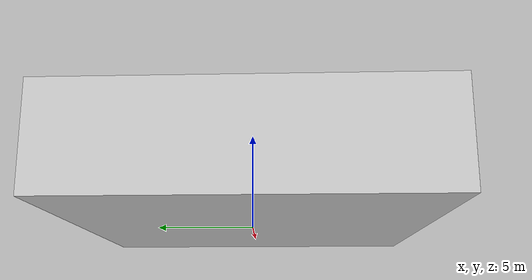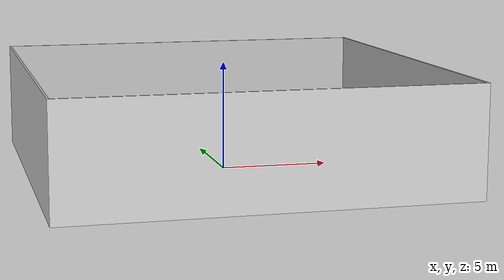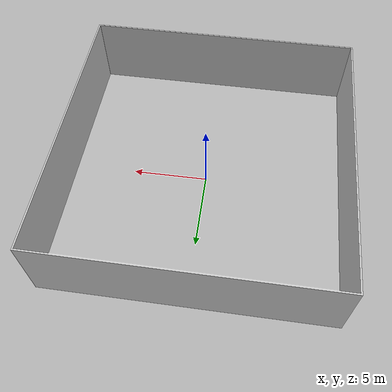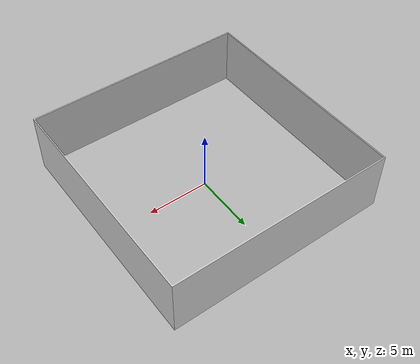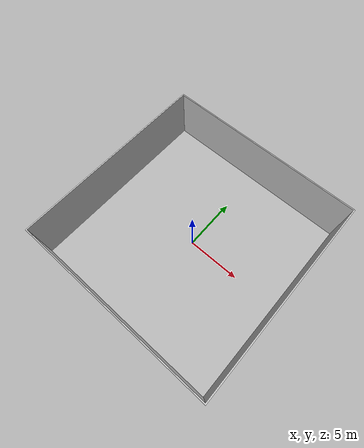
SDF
<?xml version="1.0" ?>
<sdf version="1.6">
  <model name="rtab_map_stage">
    <static>true</static>
    <link name="link">
      <collision name="collision">
        <geometry>
          <mesh>
            <scale>1 1 1</scale>
            <uri>model://rtab_map_stage/meshes/rtab_map_stage.stl</uri>
          </mesh>
        </geometry>
        <surface>
          <friction>
            <ode>
              <mu>1.2</mu>
              <mu2>1.2</mu2>
            </ode>
          </friction>
        </surface>
      </collision>
      <visual name="visual">
        <geometry>
          <mesh>
            <scale>1 1 1</scale>
            <uri>model://rtab_map_stage/meshes/rtab_map_state.dae</uri>
          </mesh>
        </geometry>
      </visual>
    </link>
  </model>
</sdf>
